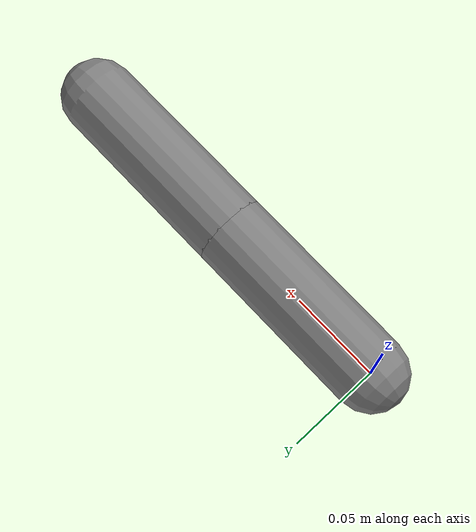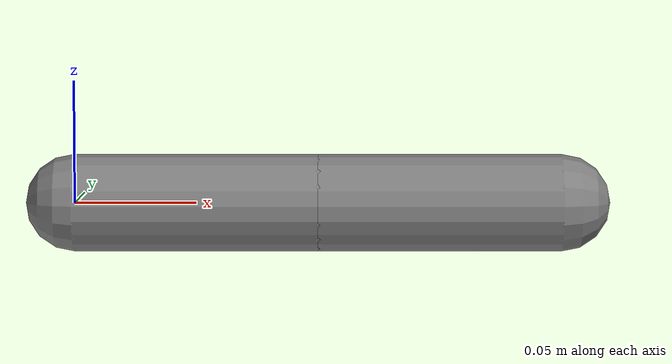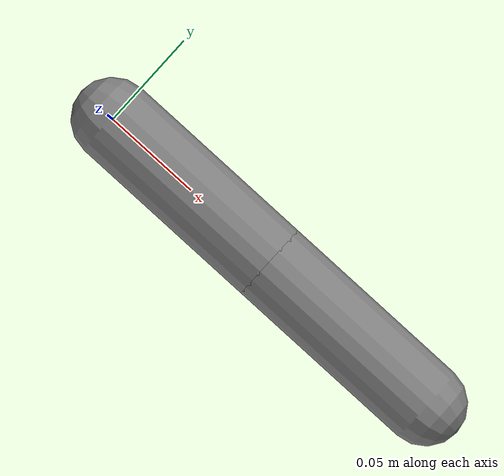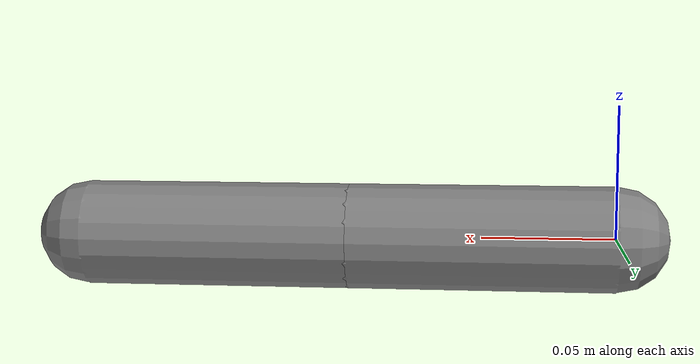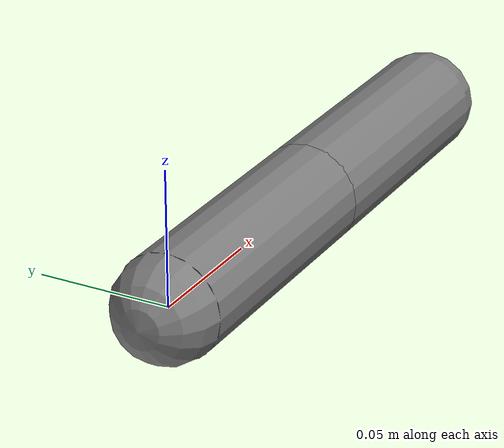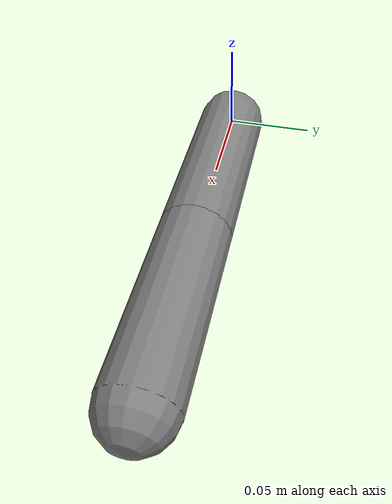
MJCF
<mujoco model="double pendulum">
    <option integrator="RK4">
        <flag constraint="disable" energy="enable" />
    </option>
    <worldbody>
        <light pos="0 0 2" />
        <geom pos="0 0 -.5" type="plane" size="1 1 .01" />
        <body pos="0 0 0">
            <!-- 第一段单摆 -->
            <joint type="hinge" axis="0 1 0" />
            <geom type="capsule" size="0.02" fromto="0 0 0 0.1 0 0" />
            <body pos="0.1 0 0">
                <!-- 第二段单摆 -->
                <joint type="hinge" axis="0 1 0" damping="0.004"/>
                <geom type="capsule" size="0.02" fromto="0 0 0 0.1 0 0" />
            </body>
        </body>
    </worldbody>
</mujoco>
